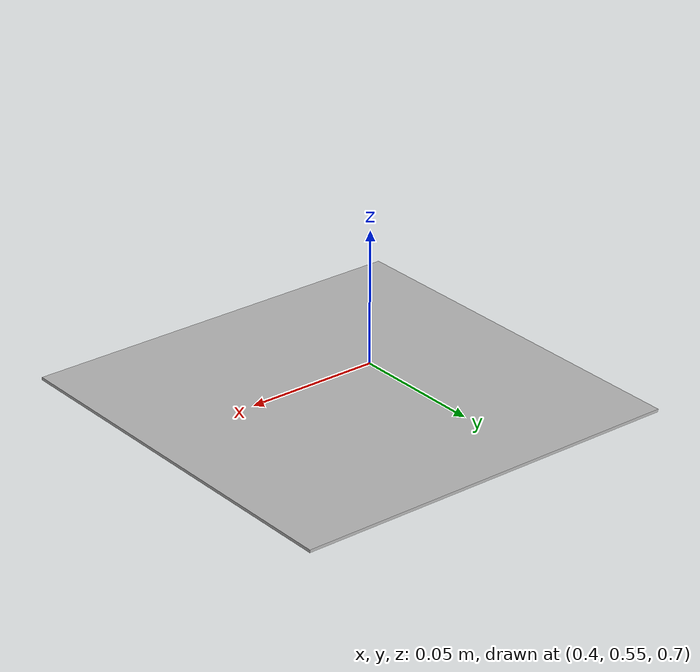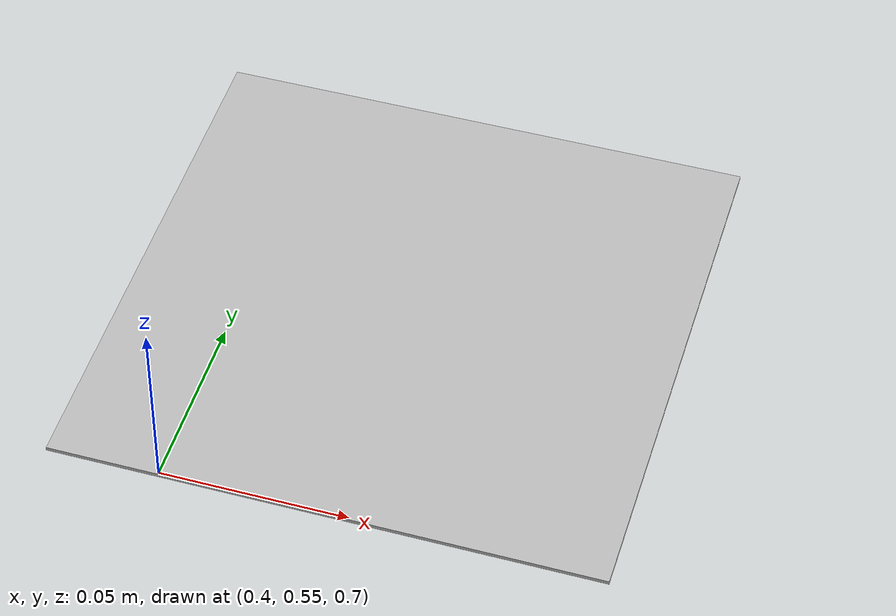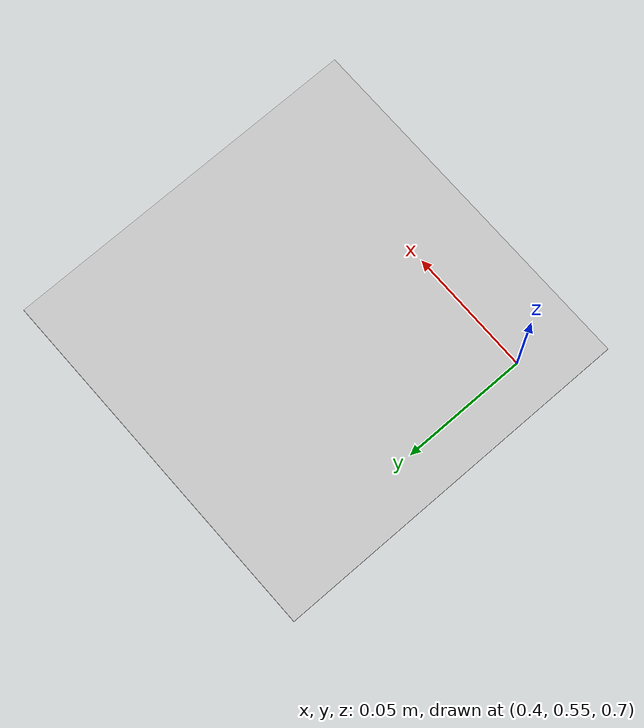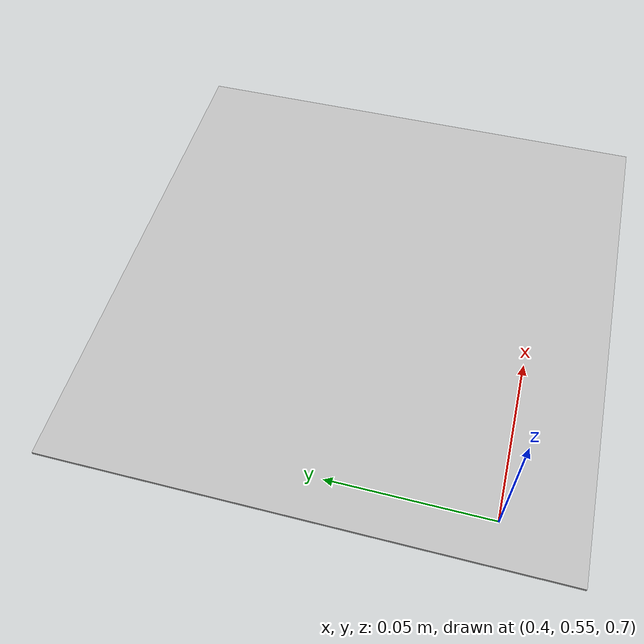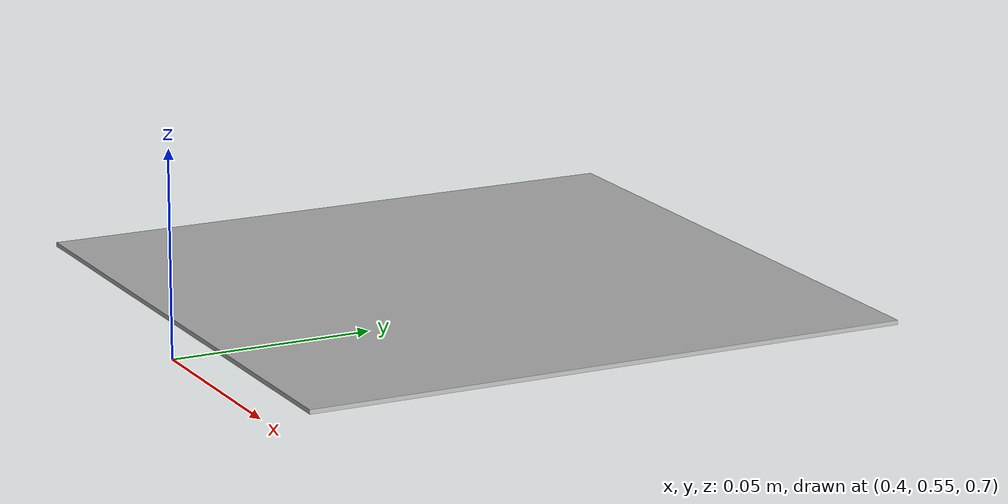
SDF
<?xml version="1.0" ?>
<sdf version="1.4">
  <world name="default">
    <include>
      <uri>model://ground_plane</uri>
      <pose>0 0 -0.5 0.0 0.0 0.0</pose>
    </include>
    <include>
      <uri>model://sun</uri>
    </include>

    <!-- AR marker -->
    <include>
      <uri>model://marker26_14cm_margin_1cm</uri>
      <pose>0.45 0.6 0.725 3.14159265359 0.0 0.0</pose>
    </include>

    <!-- Add a light on top of REEM and the marker -->

    <physics type='ode'>
      <max_step_size>0.001</max_step_size>
      <real_time_factor>1</real_time_factor>
      <real_time_update_rate>1000</real_time_update_rate>
      <gravity>0 0 -9.8</gravity>
    </physics>

  </world>
</sdf>

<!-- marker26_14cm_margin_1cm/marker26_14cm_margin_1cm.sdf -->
<sdf version="1.4">
  <model name="marker26_14cm_margin_1cm">
    <static>1</static>
    <link name="marker">
      <inertial>
        <mass>0.0</mass>
        <inertia>
          <ixx>0.000000</ixx>
          <ixy>0.000000</ixy>
          <ixz>0.000000</ixz>
          <iyy>0.000000</iyy>
          <iyz>0.000000</iyz>
          <izz>0.000000</izz>
        </inertia>
      </inertial>
      <visual name="visual">
        <geometry>
          <box>
            <size>0.14 0.14 0.001</size>
            <!-- SIZE OF THE MARKER + MARGIN -->
          </box>
        </geometry>
        <material>
          <script>
	    <uri>model://marker26_14cm_margin_1cm/material/scripts</uri>
	    <uri>model://marker26_14cm_margin_1cm/material/textures</uri>
            <name>Aruco/marker26_14cm_margin_1cm</name>
          </script>
        </material>
      </visual>
      <collision name="collision">
        <geometry>
          <box>
            <size>0.14 0.14 0.02</size>
            <!-- SIZE OF THE MARKER + MARGIN -->
          </box>
        </geometry>
        <surface>
          <bounce />
          <friction>
            <ode />
          </friction>
          <contact>
            <ode />
          </contact>
        </surface>
      </collision>
      <self_collide>1</self_collide>
      <kinematic>0</kinematic>
      <gravity>1</gravity>
    </link>
  </model>
</sdf>
